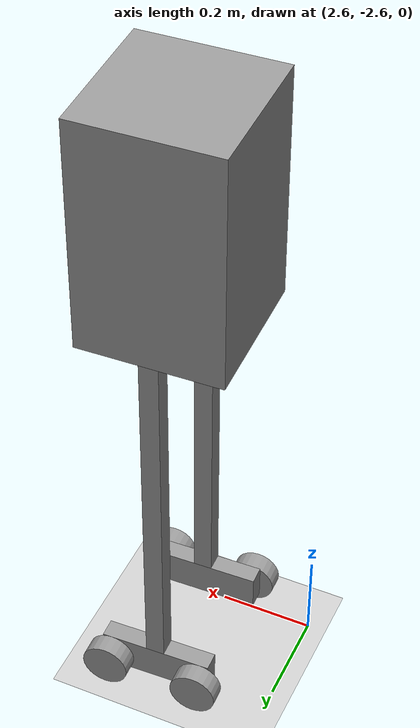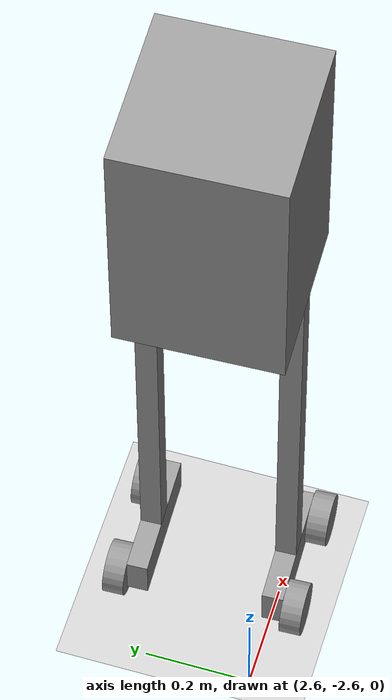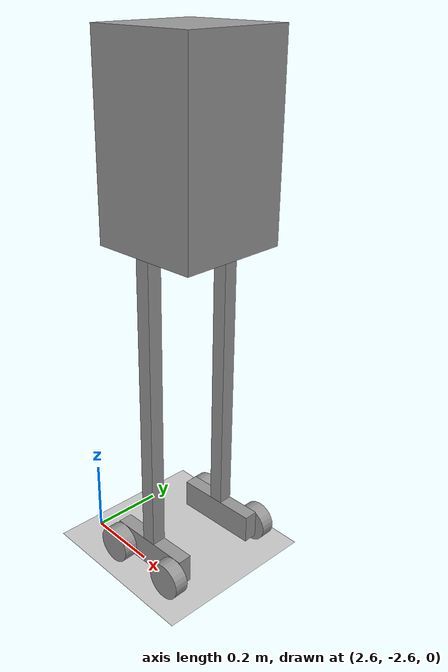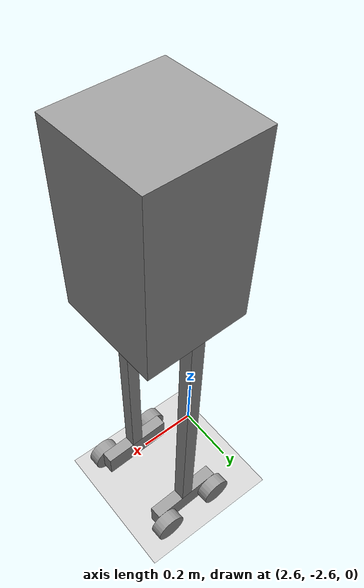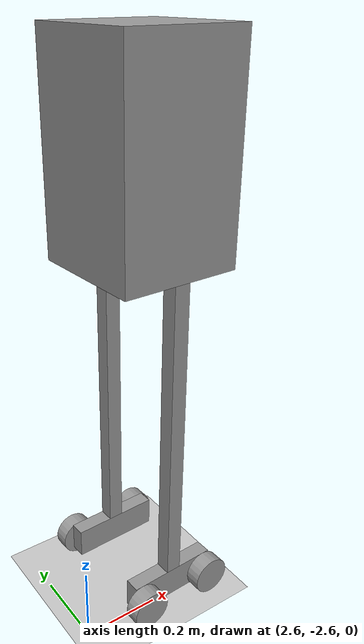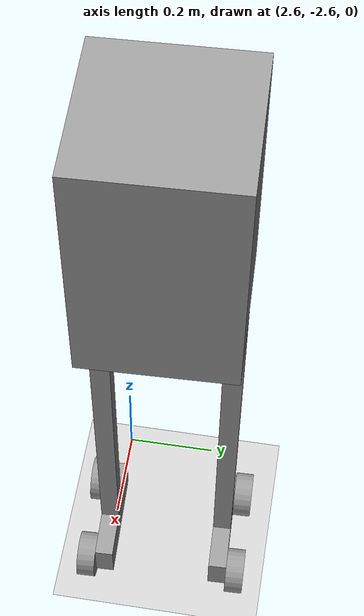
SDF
<sdf version="1.6">
 <world name="default">
  <model name="ground_plane">
   <static>1</static>
   <link name="link">
    <collision name="collision">
     <geometry><plane><normal>0 0 1</normal><size>100 100</size></plane></geometry>
     <surface>
      <contact><collide_bitmask>65535</collide_bitmask></contact>
      <friction><ode><mu>100</mu><mu2>50</mu2></ode></friction>
     </surface>
    </collision>
    <visual name="visual">
     <cast_shadows>0</cast_shadows>
     <geometry><plane><normal>0 0 1</normal><size>100 100</size></plane></geometry>
     <material>
      <script><uri>file://media/materials/scripts/gazebo.material</uri><name>Gazebo/Grey</name></script>
     </material>
    </visual>
   </link>
  </model>
  <model name="humanoidrobot_0">
   <link name="link_0">
    <pose>0 -0 0.875556 0 -0 0</pose>
    <inertial>
     <mass>1</mass>
     <inertia>
      <ixx>0.166667</ixx>
      <ixy>0</ixy>
      <ixz>0</ixz>
      <iyy>0.166667</iyy>
      <iyz>0</iyz>
      <izz>0.166667</izz>
     </inertia>
    </inertial>
    <visual name="visual">
     <geometry><box><size>0.3 0.3 0.5</size></box></geometry>
     <material>
      <lighting>1</lighting>
      <script><uri>file://media/materials/scripts/gazebo.material</uri><name>Gazebo/Grey</name></script>
      <shader type="pixel"><normal_map>__default__</normal_map></shader>
      <ambient>0.3 0.3 0.3 1</ambient>
      <diffuse>0.7 0.7 0.7 1</diffuse>
      <specular>0.01 0.01 0.01 1</specular>
      <emissive>0 0 0 1</emissive>
     </material>
    </visual>
    <collision name="collision">
     <geometry><box><size>0.3 0.3 0.5</size></box></geometry>
     <surface>
      <friction>
       <ode><mu>1</mu><mu2>1</mu2><fdir1>0 0 0</fdir1><slip1>0</slip1><slip2>0</slip2></ode>
       <torsional>
        <coefficient>1</coefficient>
        <patch_radius>0</patch_radius>
        <surface_radius>0</surface_radius>
        <use_patch_radius>1</use_patch_radius>
        <ode><slip>0</slip></ode>
       </torsional>
      </friction>
      <bounce><restitution_coefficient>0</restitution_coefficient><threshold>1e+06</threshold></bounce>
      <contact>
       <collide_without_contact>0</collide_without_contact>
       <collide_without_contact_bitmask>1</collide_without_contact_bitmask>
       <collide_bitmask>1</collide_bitmask>
       <ode>
        <soft_cfm>0</soft_cfm>
        <soft_erp>0.2</soft_erp>
        <kp>1e+13</kp>
        <kd>1</kd>
        <max_vel>0.01</max_vel>
        <min_depth>0</min_depth>
       </ode>
       <bullet>
        <split_impulse>1</split_impulse>
        <split_impulse_penetration_threshold>-0.01</split_impulse_penetration_threshold>
        <soft_cfm>0</soft_cfm>
        <soft_erp>0.2</soft_erp>
        <kp>1e+13</kp>
        <kd>1</kd>
       </bullet>
      </contact>
     </surface>
    </collision>
   </link>
   <link name="link_0_clone">
    <pose>0 0.13 0.225556 0 -0 0</pose>
    <inertial>
     <mass>1</mass>
     <inertia>
      <ixx>0.166667</ixx>
      <ixy>0</ixy>
      <ixz>0</ixz>
      <iyy>0.166667</iyy>
      <iyz>0</iyz>
      <izz>0.166667</izz>
     </inertia>
    </inertial>
    <visual name="visual">
     <geometry><box><size>0.04 0.04 0.8</size></box></geometry>
     <material>
      <lighting>1</lighting>
      <script><uri>file://media/materials/scripts/gazebo.material</uri><name>Gazebo/Grey</name></script>
      <shader type="pixel"><normal_map>__default__</normal_map></shader>
      <ambient>0.3 0.3 0.3 1</ambient>
      <diffuse>0.7 0.7 0.7 1</diffuse>
      <specular>0.01 0.01 0.01 1</specular>
      <emissive>0 0 0 1</emissive>
     </material>
    </visual>
    <collision name="collision">
     <geometry><box><size>0.04 0.04 0.8</size></box></geometry>
     <surface>
      <friction>
       <ode><mu>1</mu><mu2>1</mu2><fdir1>0 0 0</fdir1><slip1>0</slip1><slip2>0</slip2></ode>
       <torsional>
        <coefficient>1</coefficient>
        <patch_radius>0</patch_radius>
        <surface_radius>0</surface_radius>
        <use_patch_radius>1</use_patch_radius>
        <ode><slip>0</slip></ode>
       </torsional>
      </friction>
      <bounce><restitution_coefficient>0</restitution_coefficient><threshold>1e+06</threshold></bounce>
      <contact>
       <collide_without_contact>0</collide_without_contact>
       <collide_without_contact_bitmask>1</collide_without_contact_bitmask>
       <collide_bitmask>1</collide_bitmask>
       <ode>
        <soft_cfm>0</soft_cfm>
        <soft_erp>0.2</soft_erp>
        <kp>1e+13</kp>
        <kd>1</kd>
        <max_vel>0.01</max_vel>
        <min_depth>0</min_depth>
       </ode>
       <bullet>
        <split_impulse>1</split_impulse>
        <split_impulse_penetration_threshold>-0.01</split_impulse_penetration_threshold>
        <soft_cfm>0</soft_cfm>
        <soft_erp>0.2</soft_erp>
        <kp>1e+13</kp>
        <kd>1</kd>
       </bullet>
      </contact>
     </surface>
    </collision>
   </link>
   <link name="link_0_clone_clone">
    <pose>-0 -0.13 0.225556 0 -0 0</pose>
    <inertial>
     <mass>1</mass>
     <inertia>
      <ixx>0.166667</ixx>
      <ixy>0</ixy>
      <ixz>0</ixz>
      <iyy>0.166667</iyy>
      <iyz>0</iyz>
      <izz>0.166667</izz>
     </inertia>
    </inertial>
    <visual name="visual">
     <geometry><box><size>0.04 0.04 0.8</size></box></geometry>
     <material>
      <lighting>1</lighting>
      <script><uri>file://media/materials/scripts/gazebo.material</uri><name>Gazebo/Grey</name></script>
      <shader type="pixel"><normal_map>__default__</normal_map></shader>
      <ambient>0.3 0.3 0.3 1</ambient>
      <diffuse>0.7 0.7 0.7 1</diffuse>
      <specular>0.01 0.01 0.01 1</specular>
      <emissive>0 0 0 1</emissive>
     </material>
    </visual>
    <collision name="collision">
     <geometry><box><size>0.04 0.04 0.8</size></box></geometry>
     <surface>
      <friction>
       <ode><mu>1</mu><mu2>1</mu2><fdir1>0 0 0</fdir1><slip1>0</slip1><slip2>0</slip2></ode>
       <torsional>
        <coefficient>1</coefficient>
        <patch_radius>0</patch_radius>
        <surface_radius>0</surface_radius>
        <use_patch_radius>1</use_patch_radius>
        <ode><slip>0</slip></ode>
       </torsional>
      </friction>
      <bounce><restitution_coefficient>0</restitution_coefficient><threshold>1e+06</threshold></bounce>
      <contact>
       <collide_without_contact>0</collide_without_contact>
       <collide_without_contact_bitmask>1</collide_without_contact_bitmask>
       <collide_bitmask>1</collide_bitmask>
       <ode>
        <soft_cfm>0</soft_cfm>
        <soft_erp>0.2</soft_erp>
        <kp>1e+13</kp>
        <kd>1</kd>
        <max_vel>0.01</max_vel>
        <min_depth>0</min_depth>
       </ode>
       <bullet>
        <split_impulse>1</split_impulse>
        <split_impulse_penetration_threshold>-0.01</split_impulse_penetration_threshold>
        <soft_cfm>0</soft_cfm>
        <soft_erp>0.2</soft_erp>
        <kp>1e+13</kp>
        <kd>1</kd>
       </bullet>
      </contact>
     </surface>
    </collision>
   </link>
   <link name="link_1">
    <pose>0 0.13 -0.214444 0 -0 0</pose>
    <inertial>
     <mass>1</mass>
     <inertia>
      <ixx>0.166667</ixx>
      <ixy>0</ixy>
      <ixz>0</ixz>
      <iyy>0.166667</iyy>
      <iyz>0</iyz>
      <izz>0.166667</izz>
     </inertia>
    </inertial>
    <visual name="visual">
     <geometry><box><size>0.24 0.04 0.08</size></box></geometry>
     <material>
      <lighting>1</lighting>
      <script><uri>file://media/materials/scripts/gazebo.material</uri><name>Gazebo/Grey</name></script>
      <shader type="pixel"><normal_map>__default__</normal_map></shader>
      <ambient>0.3 0.3 0.3 1</ambient>
      <diffuse>0.7 0.7 0.7 1</diffuse>
      <specular>0.01 0.01 0.01 1</specular>
      <emissive>0 0 0 1</emissive>
     </material>
    </visual>
    <collision name="collision">
     <geometry><box><size>0.24 0.04 0.08</size></box></geometry>
     <surface>
      <friction>
       <ode><mu>1</mu><mu2>1</mu2><fdir1>0 0 0</fdir1><slip1>0</slip1><slip2>0</slip2></ode>
       <torsional>
        <coefficient>1</coefficient>
        <patch_radius>0</patch_radius>
        <surface_radius>0</surface_radius>
        <use_patch_radius>1</use_patch_radius>
        <ode><slip>0</slip></ode>
       </torsional>
      </friction>
      <bounce><restitution_coefficient>0</restitution_coefficient><threshold>1e+06</threshold></bounce>
      <contact>
       <collide_without_contact>0</collide_without_contact>
       <collide_without_contact_bitmask>1</collide_without_contact_bitmask>
       <collide_bitmask>1</collide_bitmask>
       <ode>
        <soft_cfm>0</soft_cfm>
        <soft_erp>0.2</soft_erp>
        <kp>1e+13</kp>
        <kd>1</kd>
        <max_vel>0.01</max_vel>
        <min_depth>0</min_depth>
       </ode>
       <bullet>
        <split_impulse>1</split_impulse>
        <split_impulse_penetration_threshold>-0.01</split_impulse_penetration_threshold>
        <soft_cfm>0</soft_cfm>
        <soft_erp>0.2</soft_erp>
        <kp>1e+13</kp>
        <kd>1</kd>
       </bullet>
      </contact>
     </surface>
    </collision>
   </link>
   <link name="link_1_clone">
    <pose>-0 -0.13 -0.214444 0 -0 0</pose>
    <inertial>
     <mass>1</mass>
     <inertia>
      <ixx>0.166667</ixx>
      <ixy>0</ixy>
      <ixz>0</ixz>
      <iyy>0.166667</iyy>
      <iyz>0</iyz>
      <izz>0.166667</izz>
     </inertia>
    </inertial>
    <visual name="visual">
     <geometry><box><size>0.24 0.04 0.08</size></box></geometry>
     <material>
      <lighting>1</lighting>
      <script><uri>file://media/materials/scripts/gazebo.material</uri><name>Gazebo/Grey</name></script>
      <shader type="pixel"><normal_map>__default__</normal_map></shader>
      <ambient>0.3 0.3 0.3 1</ambient>
      <diffuse>0.7 0.7 0.7 1</diffuse>
      <specular>0.01 0.01 0.01 1</specular>
      <emissive>0 0 0 1</emissive>
     </material>
    </visual>
    <collision name="collision">
     <geometry><box><size>0.24 0.04 0.08</size></box></geometry>
     <surface>
      <friction>
       <ode><mu>1</mu><mu2>1</mu2><fdir1>0 0 0</fdir1><slip1>0</slip1><slip2>0</slip2></ode>
       <torsional>
        <coefficient>1</coefficient>
        <patch_radius>0</patch_radius>
        <surface_radius>0</surface_radius>
        <use_patch_radius>1</use_patch_radius>
        <ode><slip>0</slip></ode>
       </torsional>
      </friction>
      <bounce><restitution_coefficient>0</restitution_coefficient><threshold>1e+06</threshold></bounce>
      <contact>
       <collide_without_contact>0</collide_without_contact>
       <collide_without_contact_bitmask>1</collide_without_contact_bitmask>
       <collide_bitmask>1</collide_bitmask>
       <ode>
        <soft_cfm>0</soft_cfm>
        <soft_erp>0.2</soft_erp>
        <kp>1e+13</kp>
        <kd>1</kd>
        <max_vel>0.01</max_vel>
        <min_depth>0</min_depth>
       </ode>
       <bullet>
        <split_impulse>1</split_impulse>
        <split_impulse_penetration_threshold>-0.01</split_impulse_penetration_threshold>
        <soft_cfm>0</soft_cfm>
        <soft_erp>0.2</soft_erp>
        <kp>1e+13</kp>
        <kd>1</kd>
       </bullet>
      </contact>
     </surface>
    </collision>
   </link>
   <link name="link_2">
    <pose>0.1 -0.17 -0.224444 1.5707 -0 0</pose>
    <inertial>
     <mass>1</mass>
     <inertia><ixx>0.145833</ixx><ixy>0</ixy><ixz>0</ixz><iyy>0.145833</iyy><iyz>0</iyz><izz>0.125</izz></inertia>
    </inertial>
    <visual name="visual">
     <geometry><cylinder><radius>0.05</radius><length>0.04</length></cylinder></geometry>
     <material>
      <lighting>1</lighting>
      <script><uri>file://media/materials/scripts/gazebo.material</uri><name>Gazebo/Grey</name></script>
      <shader type="pixel"><normal_map>__default__</normal_map></shader>
      <ambient>0.3 0.3 0.3 1</ambient>
      <diffuse>0.7 0.7 0.7 1</diffuse>
      <specular>0.01 0.01 0.01 1</specular>
      <emissive>0 0 0 1</emissive>
     </material>
    </visual>
    <collision name="collision">
     <geometry><cylinder><radius>0.05</radius><length>0.04</length></cylinder></geometry>
     <surface>
      <friction>
       <ode><mu>1</mu><mu2>1</mu2><fdir1>0 0 0</fdir1><slip1>0</slip1><slip2>0</slip2></ode>
       <torsional>
        <coefficient>1</coefficient>
        <patch_radius>0</patch_radius>
        <surface_radius>0</surface_radius>
        <use_patch_radius>1</use_patch_radius>
        <ode><slip>0</slip></ode>
       </torsional>
      </friction>
      <bounce><restitution_coefficient>0</restitution_coefficient><threshold>1e+06</threshold></bounce>
      <contact>
       <collide_without_contact>0</collide_without_contact>
       <collide_without_contact_bitmask>1</collide_without_contact_bitmask>
       <collide_bitmask>1</collide_bitmask>
       <ode>
        <soft_cfm>0</soft_cfm>
        <soft_erp>0.2</soft_erp>
        <kp>1e+13</kp>
        <kd>1</kd>
        <max_vel>0.01</max_vel>
        <min_depth>0</min_depth>
       </ode>
       <bullet>
        <split_impulse>1</split_impulse>
        <split_impulse_penetration_threshold>-0.01</split_impulse_penetration_threshold>
        <soft_cfm>0</soft_cfm>
        <soft_erp>0.2</soft_erp>
        <kp>1e+13</kp>
        <kd>1</kd>
       </bullet>
      </contact>
     </surface>
    </collision>
   </link>
   <link name="link_2_clone">
    <pose>-0.1 -0.17 -0.224444 1.5707 -0 0</pose>
    <inertial>
     <mass>1</mass>
     <inertia><ixx>0.145833</ixx><ixy>0</ixy><ixz>0</ixz><iyy>0.145833</iyy><iyz>0</iyz><izz>0.125</izz></inertia>
    </inertial>
    <visual name="visual">
     <geometry><cylinder><radius>0.05</radius><length>0.04</length></cylinder></geometry>
     <material>
      <lighting>1</lighting>
      <script><uri>file://media/materials/scripts/gazebo.material</uri><name>Gazebo/Grey</name></script>
      <shader type="pixel"><normal_map>__default__</normal_map></shader>
      <ambient>0.3 0.3 0.3 1</ambient>
      <diffuse>0.7 0.7 0.7 1</diffuse>
      <specular>0.01 0.01 0.01 1</specular>
      <emissive>0 0 0 1</emissive>
     </material>
    </visual>
    <collision name="collision">
     <geometry><cylinder><radius>0.05</radius><length>0.04</length></cylinder></geometry>
     <surface>
      <friction>
       <ode><mu>1</mu><mu2>1</mu2><fdir1>0 0 0</fdir1><slip1>0</slip1><slip2>0</slip2></ode>
       <torsional>
        <coefficient>1</coefficient>
        <patch_radius>0</patch_radius>
        <surface_radius>0</surface_radius>
        <use_patch_radius>1</use_patch_radius>
        <ode><slip>0</slip></ode>
       </torsional>
      </friction>
      <bounce><restitution_coefficient>0</restitution_coefficient><threshold>1e+06</threshold></bounce>
      <contact>
       <collide_without_contact>0</collide_without_contact>
       <collide_without_contact_bitmask>1</collide_without_contact_bitmask>
       <collide_bitmask>1</collide_bitmask>
       <ode>
        <soft_cfm>0</soft_cfm>
        <soft_erp>0.2</soft_erp>
        <kp>1e+13</kp>
        <kd>1</kd>
        <max_vel>0.01</max_vel>
        <min_depth>0</min_depth>
       </ode>
       <bullet>
        <split_impulse>1</split_impulse>
        <split_impulse_penetration_threshold>-0.01</split_impulse_penetration_threshold>
        <soft_cfm>0</soft_cfm>
        <soft_erp>0.2</soft_erp>
        <kp>1e+13</kp>
        <kd>1</kd>
       </bullet>
      </contact>
     </surface>
    </collision>
   </link>
   <link name="link_2_clone_0">
    <pose>0.1 0.17 -0.224444 1.5707 -0 0</pose>
    <inertial>
     <mass>1</mass>
     <inertia><ixx>0.145833</ixx><ixy>0</ixy><ixz>0</ixz><iyy>0.145833</iyy><iyz>0</iyz><izz>0.125</izz></inertia>
    </inertial>
    <visual name="visual">
     <geometry><cylinder><radius>0.05</radius><length>0.04</length></cylinder></geometry>
     <material>
      <lighting>1</lighting>
      <script><uri>file://media/materials/scripts/gazebo.material</uri><name>Gazebo/Grey</name></script>
      <shader type="pixel"><normal_map>__default__</normal_map></shader>
      <ambient>0.3 0.3 0.3 1</ambient>
      <diffuse>0.7 0.7 0.7 1</diffuse>
      <specular>0.01 0.01 0.01 1</specular>
      <emissive>0 0 0 1</emissive>
     </material>
    </visual>
    <collision name="collision">
     <geometry><cylinder><radius>0.05</radius><length>0.04</length></cylinder></geometry>
     <surface>
      <friction>
       <ode><mu>1</mu><mu2>1</mu2><fdir1>0 0 0</fdir1><slip1>0</slip1><slip2>0</slip2></ode>
       <torsional>
        <coefficient>1</coefficient>
        <patch_radius>0</patch_radius>
        <surface_radius>0</surface_radius>
        <use_patch_radius>1</use_patch_radius>
        <ode><slip>0</slip></ode>
       </torsional>
      </friction>
      <bounce><restitution_coefficient>0</restitution_coefficient><threshold>1e+06</threshold></bounce>
      <contact>
       <collide_without_contact>0</collide_without_contact>
       <collide_without_contact_bitmask>1</collide_without_contact_bitmask>
       <collide_bitmask>1</collide_bitmask>
       <ode>
        <soft_cfm>0</soft_cfm>
        <soft_erp>0.2</soft_erp>
        <kp>1e+13</kp>
        <kd>1</kd>
        <max_vel>0.01</max_vel>
        <min_depth>0</min_depth>
       </ode>
       <bullet>
        <split_impulse>1</split_impulse>
        <split_impulse_penetration_threshold>-0.01</split_impulse_penetration_threshold>
        <soft_cfm>0</soft_cfm>
        <soft_erp>0.2</soft_erp>
        <kp>1e+13</kp>
        <kd>1</kd>
       </bullet>
      </contact>
     </surface>
    </collision>
   </link>
   <link name="link_2_clone_1">
    <pose>-0.1 0.17 -0.224444 1.5707 -0 0</pose>
    <inertial>
     <mass>1</mass>
     <inertia><ixx>0.145833</ixx><ixy>0</ixy><ixz>0</ixz><iyy>0.145833</iyy><iyz>0</iyz><izz>0.125</izz></inertia>
    </inertial>
    <visual name="visual">
     <geometry><cylinder><radius>0.05</radius><length>0.04</length></cylinder></geometry>
     <material>
      <lighting>1</lighting>
      <script><uri>file://media/materials/scripts/gazebo.material</uri><name>Gazebo/Grey</name></script>
      <shader type="pixel"><normal_map>__default__</normal_map></shader>
      <ambient>0.3 0.3 0.3 1</ambient>
      <diffuse>0.7 0.7 0.7 1</diffuse>
      <specular>0.01 0.01 0.01 1</specular>
      <emissive>0 0 0 1</emissive>
     </material>
    </visual>
    <collision name="collision">
     <geometry><cylinder><radius>0.05</radius><length>0.04</length></cylinder></geometry>
     <surface>
      <friction>
       <ode><mu>1</mu><mu2>1</mu2><fdir1>0 0 0</fdir1><slip1>0</slip1><slip2>0</slip2></ode>
       <torsional>
        <coefficient>1</coefficient>
        <patch_radius>0</patch_radius>
        <surface_radius>0</surface_radius>
        <use_patch_radius>1</use_patch_radius>
        <ode><slip>0</slip></ode>
       </torsional>
      </friction>
      <bounce><restitution_coefficient>0</restitution_coefficient><threshold>1e+06</threshold></bounce>
      <contact>
       <collide_without_contact>0</collide_without_contact>
       <collide_without_contact_bitmask>1</collide_without_contact_bitmask>
       <collide_bitmask>1</collide_bitmask>
       <ode>
        <soft_cfm>0</soft_cfm>
        <soft_erp>0.2</soft_erp>
        <kp>1e+13</kp>
        <kd>1</kd>
        <max_vel>0.01</max_vel>
        <min_depth>0</min_depth>
       </ode>
       <bullet>
        <split_impulse>1</split_impulse>
        <split_impulse_penetration_threshold>-0.01</split_impulse_penetration_threshold>
        <soft_cfm>0</soft_cfm>
        <soft_erp>0.2</soft_erp>
        <kp>1e+13</kp>
        <kd>1</kd>
       </bullet>
      </contact>
     </surface>
    </collision>
   </link>
   <joint name="link_0_JOINT_0" type="fixed">
    <parent>link_0</parent>
    <child>link_0_clone</child>
    <physics>
     <ode><limit><cfm>0</cfm><erp>0.2</erp></limit><suspension><cfm>0</cfm><erp>0.2</erp></suspension></ode>
    </physics>
   </joint>
   <joint name="link_0_JOINT_1" type="fixed">
    <parent>link_0</parent>
    <child>link_0_clone_clone</child>
    <physics>
     <ode><limit><cfm>0</cfm><erp>0.2</erp></limit><suspension><cfm>0</cfm><erp>0.2</erp></suspension></ode>
    </physics>
   </joint>
   <joint name="link_0_clone_JOINT_2" type="fixed">
    <parent>link_0_clone</parent>
    <child>link_1</child>
    <pose>0 0 0 -0.01 0 0</pose>
    <physics>
     <ode><limit><cfm>0</cfm><erp>0.2</erp></limit><suspension><cfm>0</cfm><erp>0.2</erp></suspension></ode>
    </physics>
   </joint>
   <joint name="link_0_clone_clone_JOINT_3" type="fixed">
    <parent>link_0_clone_clone</parent>
    <child>link_1_clone</child>
    <physics>
     <ode><limit><cfm>0</cfm><erp>0.2</erp></limit><suspension><cfm>0</cfm><erp>0.2</erp></suspension></ode>
    </physics>
   </joint>
   <joint name="link_1_JOINT_6" type="revolute">
    <parent>link_1</parent>
    <child>link_2_clone_0</child>
    <axis>
     <xyz>1 0 0</xyz>
     <use_parent_model_frame>0</use_parent_model_frame>
     <limit>
      <lower>-1.79769e+308</lower>
      <upper>1.79769e+308</upper>
      <effort>-1</effort>
      <velocity>-1</velocity>
     </limit>
     <dynamics>
      <spring_reference>0</spring_reference>
      <spring_stiffness>0</spring_stiffness>
      <damping>0</damping>
      <friction>0</friction>
     </dynamics>
    </axis>
    <physics>
     <ode><limit><cfm>0</cfm><erp>0.2</erp></limit><suspension><cfm>0</cfm><erp>0.2</erp></suspension></ode>
    </physics>
   </joint>
   <joint name="link_1_JOINT_7" type="revolute">
    <parent>link_1</parent>
    <child>link_2_clone_1</child>
    <axis>
     <xyz>1 0 0</xyz>
     <use_parent_model_frame>0</use_parent_model_frame>
     <limit>
      <lower>-1.79769e+308</lower>
      <upper>1.79769e+308</upper>
      <effort>-1</effort>
      <velocity>-1</velocity>
     </limit>
     <dynamics>
      <spring_reference>0</spring_reference>
      <spring_stiffness>0</spring_stiffness>
      <damping>0</damping>
      <friction>0</friction>
     </dynamics>
    </axis>
    <physics>
     <ode><limit><cfm>0</cfm><erp>0.2</erp></limit><suspension><cfm>0</cfm><erp>0.2</erp></suspension></ode>
    </physics>
   </joint>
   <joint name="link_1_clone_JOINT_4" type="revolute">
    <parent>link_1_clone</parent>
    <child>link_2</child>
    <axis>
     <xyz>0 0 1</xyz>
     <use_parent_model_frame>0</use_parent_model_frame>
     <limit>
      <lower>-1.79769e+308</lower>
      <upper>1.79769e+308</upper>
      <effort>-1</effort>
      <velocity>-1</velocity>
     </limit>
     <dynamics>
      <spring_reference>0</spring_reference>
      <spring_stiffness>0</spring_stiffness>
      <damping>0</damping>
      <friction>0</friction>
     </dynamics>
    </axis>
    <physics>
     <ode><limit><cfm>0</cfm><erp>0.2</erp></limit><suspension><cfm>0</cfm><erp>0.2</erp></suspension></ode>
    </physics>
   </joint>
   <joint name="link_1_clone_JOINT_5" type="revolute">
    <parent>link_1_clone</parent>
    <child>link_2_clone</child>
    <axis>
     <xyz>0 0 1</xyz>
     <use_parent_model_frame>0</use_parent_model_frame>
     <limit>
      <lower>-1.79769e+308</lower>
      <upper>1.79769e+308</upper>
      <effort>-1</effort>
      <velocity>-1</velocity>
     </limit>
     <dynamics>
      <spring_reference>0</spring_reference>
      <spring_stiffness>0</spring_stiffness>
      <damping>0</damping>
      <friction>0</friction>
     </dynamics>
    </axis>
    <physics>
     <ode><limit><cfm>0</cfm><erp>0.2</erp></limit><suspension><cfm>0</cfm><erp>0.2</erp></suspension></ode>
    </physics>
   </joint>
   <static>0</static>
   <pose>2.84298 -2.4722 0.274445 -1.5e-05 1.1e-05 0.033827</pose>
  </model>
 </world>
</sdf>
